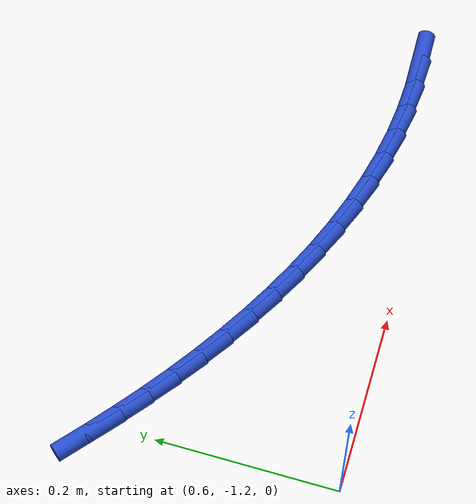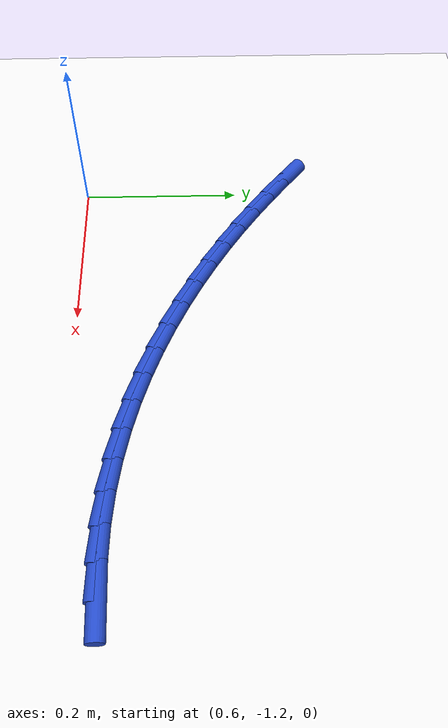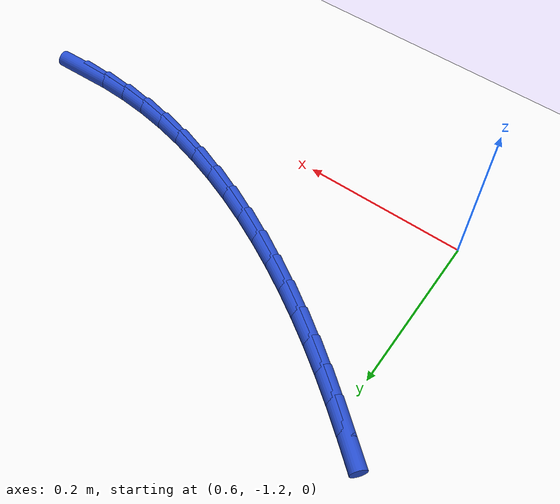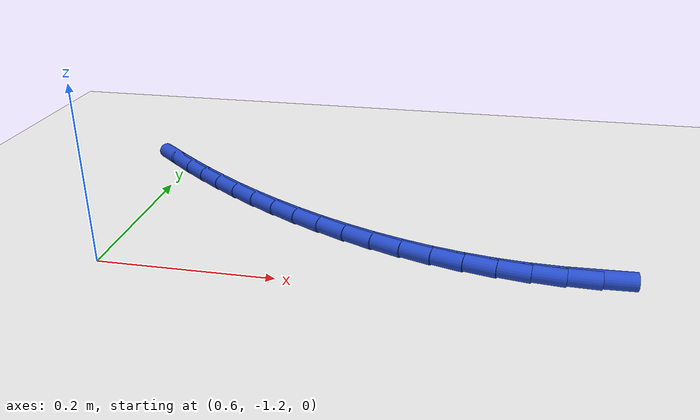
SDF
<sdf version="1.6">
 <world name="default">
  <model name="ground_plane">
   <static>1</static>
   <link name="link">
    <collision name="collision">
     <geometry><plane><normal>0 0 1</normal><size>100 100</size></plane></geometry>
     <surface><friction><ode><mu>100</mu><mu2>50</mu2></ode></friction></surface>
    </collision>
    <visual name="visual">
     <cast_shadows>0</cast_shadows>
     <geometry><plane><normal>0 0 1</normal><size>100 100</size></plane></geometry>
     <material>
      <script><uri>file://media/materials/scripts/gazebo.material</uri><name>Gazebo/WhiteGlow</name></script>
     </material>
    </visual>
   </link>
  </model>
  <model name="line">
   <link name="link_160">
    <pose>1.1274937656632547 -1.1561577231382232 0.01 0 1.57 0.025216839809326305</pose>
    <collision name="collision">
     <geometry><cylinder><radius>0.01</radius><length>0.08</length></cylinder></geometry>
    </collision>
    <visual name="visual">
     <material>
      <script><name>Gazebo/Blue</name><uri>file://media/materials/scripts/gazebo.material</uri></script>
     </material>
     <geometry><cylinder><radius>0.01</radius><length>0.08</length></cylinder></geometry>
    </visual>
   </link>
   <link name="link_161">
    <pose>1.0925625511685146 -1.1570387647346223 0.01 0 1.57 -0.041394398095746535</pose>
    <collision name="collision">
     <geometry><cylinder><radius>0.01</radius><length>0.08</length></cylinder></geometry>
    </collision>
    <visual name="visual">
     <material>
      <script><name>Gazebo/Blue</name><uri>file://media/materials/scripts/gazebo.material</uri></script>
     </material>
     <geometry><cylinder><radius>0.01</radius><length>0.08</length></cylinder></geometry>
    </visual>
   </link>
   <link name="link_162">
    <pose>1.0577462089552236 -1.1555967394757751 0.01 0 1.57 -0.10667379615859765</pose>
    <collision name="collision">
     <geometry><cylinder><radius>0.01</radius><length>0.08</length></cylinder></geometry>
    </collision>
    <visual name="visual">
     <material>
      <script><name>Gazebo/Blue</name><uri>file://media/materials/scripts/gazebo.material</uri></script>
     </material>
     <geometry><cylinder><radius>0.01</radius><length>0.08</length></cylinder></geometry>
    </visual>
   </link>
   <link name="link_163">
    <pose>1.0231061730134008 -1.1518874750483243 0.01 0 1.57 -0.16834737269898395</pose>
    <collision name="collision">
     <geometry><cylinder><radius>0.01</radius><length>0.08</length></cylinder></geometry>
    </collision>
    <visual name="visual">
     <material>
      <script><name>Gazebo/Blue</name><uri>file://media/materials/scripts/gazebo.material</uri></script>
     </material>
     <geometry><cylinder><radius>0.01</radius><length>0.08</length></cylinder></geometry>
    </visual>
   </link>
   <link name="link_164">
    <pose>0.9886929379470273 -1.1460387399782606 0.01 0 1.57 -0.22632267325115488</pose>
    <collision name="collision">
     <geometry><cylinder><radius>0.01</radius><length>0.08</length></cylinder></geometry>
    </collision>
    <visual name="visual">
     <material>
      <script><name>Gazebo/Blue</name><uri>file://media/materials/scripts/gazebo.material</uri></script>
     </material>
     <geometry><cylinder><radius>0.01</radius><length>0.08</length></cylinder></geometry>
    </visual>
   </link>
   <link name="link_165">
    <pose>0.9545569937917621 -1.1381783328343107 0.01 0 1.57 -0.2806172347255712</pose>
    <collision name="collision">
     <geometry><cylinder><radius>0.01</radius><length>0.08</length></cylinder></geometry>
    </collision>
    <visual name="visual">
     <material>
      <script><name>Gazebo/Blue</name><uri>file://media/materials/scripts/gazebo.material</uri></script>
     </material>
     <geometry><cylinder><radius>0.01</radius><length>0.08</length></cylinder></geometry>
    </visual>
   </link>
   <link name="link_166">
    <pose>0.9207488305832626 -1.1284340521852008 0.01 0 1.57 -0.33133228299376116</pose>
    <collision name="collision">
     <geometry><cylinder><radius>0.01</radius><length>0.08</length></cylinder></geometry>
    </collision>
    <visual name="visual">
     <material>
      <script><name>Gazebo/Blue</name><uri>file://media/materials/scripts/gazebo.material</uri></script>
     </material>
     <geometry><cylinder><radius>0.01</radius><length>0.08</length></cylinder></geometry>
    </visual>
   </link>
   <link name="link_167">
    <pose>0.8873189383571862 -1.1169336965996566 0.01 0 1.57 -0.37862884524224616</pose>
    <collision name="collision">
     <geometry><cylinder><radius>0.01</radius><length>0.08</length></cylinder></geometry>
    </collision>
    <visual name="visual">
     <material>
      <script><name>Gazebo/Blue</name><uri>file://media/materials/scripts/gazebo.material</uri></script>
     </material>
     <geometry><cylinder><radius>0.01</radius><length>0.08</length></cylinder></geometry>
    </visual>
   </link>
   <link name="link_168">
    <pose>0.8543178071491907 -1.1038050646464048 0.01 0 1.57 -0.4227072359362351</pose>
    <collision name="collision">
     <geometry><cylinder><radius>0.01</radius><length>0.08</length></cylinder></geometry>
    </collision>
    <visual name="visual">
     <material>
      <script><name>Gazebo/Blue</name><uri>file://media/materials/scripts/gazebo.material</uri></script>
     </material>
     <geometry><cylinder><radius>0.01</radius><length>0.08</length></cylinder></geometry>
    </visual>
   </link>
   <link name="link_169">
    <pose>0.821795926994934 -1.0891759548941717 0.01 0 1.57 -0.4637906201582866</pose>
    <collision name="collision">
     <geometry><cylinder><radius>0.01</radius><length>0.08</length></cylinder></geometry>
    </collision>
    <visual name="visual">
     <material>
      <script><name>Gazebo/Blue</name><uri>file://media/materials/scripts/gazebo.material</uri></script>
     </material>
     <geometry><cylinder><radius>0.01</radius><length>0.08</length></cylinder></geometry>
    </visual>
   </link>
   <link name="link_170">
    <pose>0.7898037879300726 -1.073174165911682 0.01 0 1.57 -0.5021126121906379</pose>
    <collision name="collision">
     <geometry><cylinder><radius>0.01</radius><length>0.08</length></cylinder></geometry>
    </collision>
    <visual name="visual">
     <material>
      <script><name>Gazebo/Blue</name><uri>file://media/materials/scripts/gazebo.material</uri></script>
     </material>
     <geometry><cylinder><radius>0.01</radius><length>0.08</length></cylinder></geometry>
    </visual>
   </link>
   <link name="link_171">
    <pose>0.758391879990266 -1.0559274962676641 0.01 0 1.57 -0.5379084590818959</pose>
    <collision name="collision">
     <geometry><cylinder><radius>0.01</radius><length>0.08</length></cylinder></geometry>
    </collision>
    <visual name="visual">
     <material>
      <script><name>Gazebo/Blue</name><uri>file://media/materials/scripts/gazebo.material</uri></script>
     </material>
     <geometry><cylinder><radius>0.01</radius><length>0.08</length></cylinder></geometry>
    </visual>
   </link>
   <link name="link_172">
    <pose>0.7276106932111716 -1.0375637445308437 0.01 0 1.57 -0.5714091975287763</pose>
    <collision name="collision">
     <geometry><cylinder><radius>0.01</radius><length>0.08</length></cylinder></geometry>
    </collision>
    <visual name="visual">
     <material>
      <script><name>Gazebo/Blue</name><uri>file://media/materials/scripts/gazebo.material</uri></script>
     </material>
     <geometry><cylinder><radius>0.01</radius><length>0.08</length></cylinder></geometry>
    </visual>
   </link>
   <link name="link_173">
    <pose>0.6975107176284463 -1.018210709269946 0.01 0 1.57 -0.6028381650593491</pose>
    <collision name="collision">
     <geometry><cylinder><radius>0.01</radius><length>0.08</length></cylinder></geometry>
    </collision>
    <visual name="visual">
     <material>
      <script><name>Gazebo/Blue</name><uri>file://media/materials/scripts/gazebo.material</uri></script>
     </material>
     <geometry><cylinder><radius>0.01</radius><length>0.08</length></cylinder></geometry>
    </visual>
   </link>
   <link name="link_174">
    <pose>0.6681424432777483 -0.9979961890536978 0.01 0 1.57 -0.6324074018384602</pose>
    <collision name="collision">
     <geometry><cylinder><radius>0.01</radius><length>0.08</length></cylinder></geometry>
    </collision>
    <visual name="visual">
     <material>
      <script><name>Gazebo/Blue</name><uri>file://media/materials/scripts/gazebo.material</uri></script>
     </material>
     <geometry><cylinder><radius>0.01</radius><length>0.08</length></cylinder></geometry>
    </visual>
   </link>
   <link name="link_175">
    <pose>0.6395562325354993 -0.9770479732284468 0.01 0 1.57 -0.6595072420248951</pose>
    <collision name="collision">
     <geometry><cylinder><radius>0.01</radius><length>0.08</length></cylinder></geometry>
    </collision>
    <visual name="visual">
     <material>
      <script><name>Gazebo/Blue</name><uri>file://media/materials/scripts/gazebo.material</uri></script>
     </material>
     <geometry><cylinder><radius>0.01</radius><length>0.08</length></cylinder></geometry>
    </visual>
   </link>
   <link name="link_176">
    <pose>0.6117509902330064 -0.9554901337365445 0.01 0 1.57 -0.6820727972837128</pose>
    <collision name="collision">
     <geometry><cylinder><radius>0.01</radius><length>0.08</length></cylinder></geometry>
    </collision>
    <visual name="visual">
     <material>
      <script><name>Gazebo/Blue</name><uri>file://media/materials/scripts/gazebo.material</uri></script>
     </material>
     <geometry><cylinder><radius>0.01</radius><length>0.08</length></cylinder></geometry>
    </visual>
   </link>
   <link name="link_177">
    <pose>0.584595577543861 -0.9334373478861502 0.01 0 1.57 -0.6995977634178626</pose>
    <collision name="collision">
     <geometry><cylinder><radius>0.01</radius><length>0.08</length></cylinder></geometry>
    </collision>
    <visual name="visual">
     <material>
      <script><name>Gazebo/Blue</name><uri>file://media/materials/scripts/gazebo.material</uri></script>
     </material>
     <geometry><cylinder><radius>0.01</radius><length>0.08</length></cylinder></geometry>
    </visual>
   </link>
  </model>
 </world>
</sdf>
